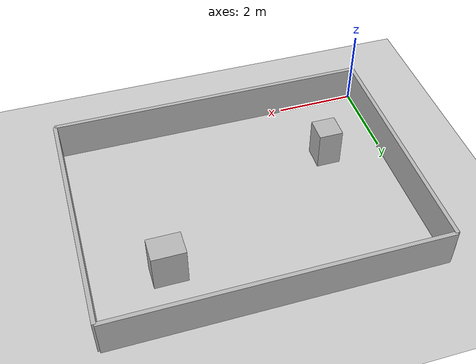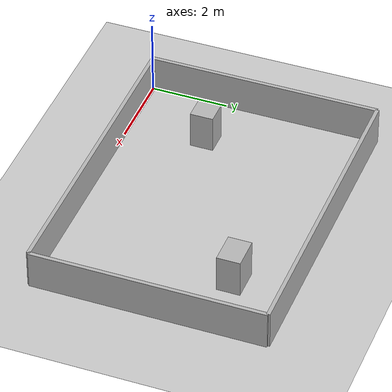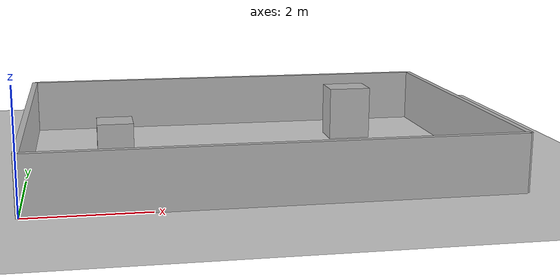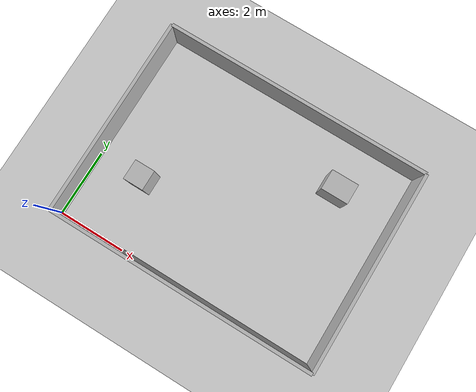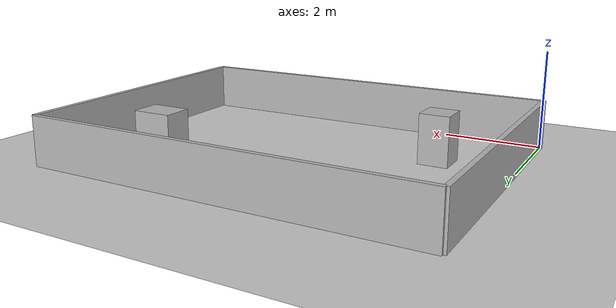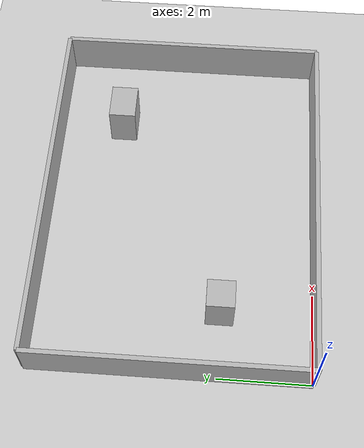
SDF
<?xml version="1.0"?><sdf version="1.6"><world name="patrol_world"><include><uri>model://sun</uri></include><include><uri>model://ground_plane</uri></include>
<model name="room"><static>true</static>
<link name="walls">
<collision name="south"><pose>4 0 .5 0 0 0</pose><geometry><box><size>8 .1 1</size></box></geometry></collision><visual name="south_v"><pose>4 0 .5 0 0 0</pose><geometry><box><size>8 .1 1</size></box></geometry></visual>
<collision name="north"><pose>4 6 .5 0 0 0</pose><geometry><box><size>8 .1 1</size></box></geometry></collision><visual name="north_v"><pose>4 6 .5 0 0 0</pose><geometry><box><size>8 .1 1</size></box></geometry></visual>
<collision name="west"><pose>0 3 .5 0 0 0</pose><geometry><box><size>.1 6 1</size></box></geometry></collision><visual name="west_v"><pose>0 3 .5 0 0 0</pose><geometry><box><size>.1 6 1</size></box></geometry></visual>
<collision name="east"><pose>8 3 .5 0 0 0</pose><geometry><box><size>.1 6 1</size></box></geometry></collision><visual name="east_v"><pose>8 3 .5 0 0 0</pose><geometry><box><size>.1 6 1</size></box></geometry></visual>
<collision name="block1"><pose>1.5 2 .5 0 0 0</pose><geometry><box><size>.6 .6 1</size></box></geometry></collision><visual name="block1_v"><pose>1.5 2 .5 0 0 0</pose><geometry><box><size>.6 .6 1</size></box></geometry></visual>
<collision name="block2"><pose>6.2 4.5 .5 0 0 0</pose><geometry><box><size>.8 .6 1</size></box></geometry></collision><visual name="block2_v"><pose>6.2 4.5 .5 0 0 0</pose><geometry><box><size>.8 .6 1</size></box></geometry></visual>
</link></model></world></sdf>
